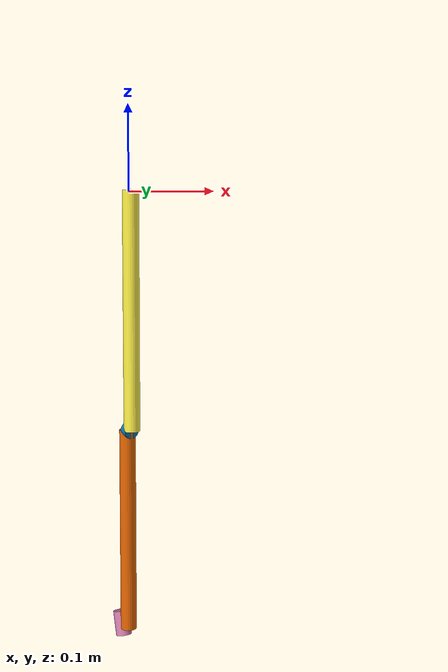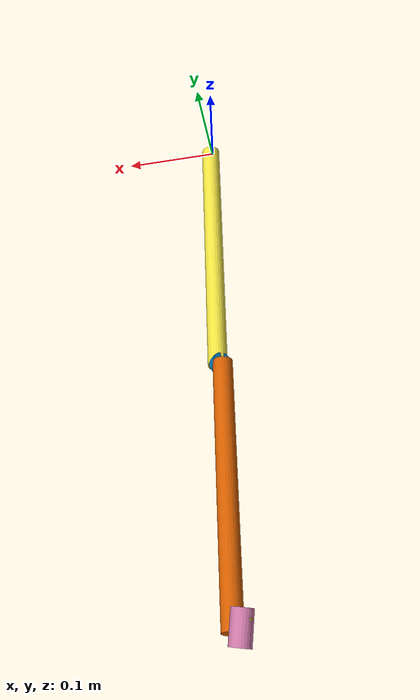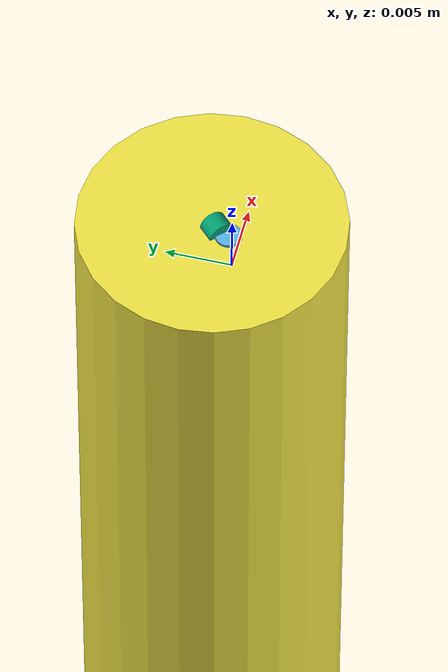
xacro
<?xml version="1.0"?>
<robot xmlns:xacro="http://www.ros.org/wiki/xacro" name="human_arm">

    <xacro:property name="bone_density" value="${1850}" />

    <xacro:property name="len_humerus_y" value=" 0.2904" />
    <xacro:property name="len_ulna_z" value=" 0.0200" />
    <xacro:property name="len_humerus_z" value=" 0.0123" />
    <xacro:property name="len_humerus_x" value=" 0.0061" />
    <xacro:property name="len_ulna_y" value=" 0.0115" />
    <xacro:property name="len_radius_y" value=" 0.2420" />
    <xacro:property name="len_radius_yprime" value=" 0.0040" />
    <xacro:property name="len_radius_d" value=" 0.0292" />
    <xacro:property name="len_radius_a" value=" 0.0105" />

    <!--Limits interfere with transformations. There is therefor given full range for each link temporarily-->
    <xacro:property name="joint1_lower" value="${0}" />
    <xacro:property name="joint1_upper" value="${2*pi}" />
    <xacro:property name="joint2_lower" value="${0}" />
    <xacro:property name="joint2_upper" value="${2*pi}" />
    <xacro:property name="joint3_lower" value="${0}" />
    <xacro:property name="joint3_upper" value="${2*pi}" />
    <xacro:property name="joint4_lower" value="${0}" />
    <xacro:property name="joint4_upper" value="${2*pi}" />
    <xacro:property name="joint5_lower" value="${0}" />
    <xacro:property name="joint5_upper" value="${2*pi}" />
    <xacro:property name="joint6_lower" value="${0}" />
    <xacro:property name="joint6_upper" value="${2*pi}" />
    <xacro:property name="joint7_lower" value="${0}" />
    <xacro:property name="joint7_upper" value="${2*pi}" />

    <xacro:macro name="inertia_tensor_cylinder" params="length:=1 radius:=0.1 mass:=1">
        <inertial>
            <mass value="${mass}"/>
            <inertia ixx="${1/12*mass*pow(length,2)}"
            ixy="0.0" ixz="0.0" iyy="0"
            iyz="0.0" izz="${1/12*mass*pow(length,2)}"/>
        </inertial>
    </xacro:macro>
    <xacro:macro name ="inertia_bone_cylinder" params="length radius">
        <xacro:inertia_tensor_cylinder length="${length}" radius="${radius}"
         mass="${bone_density*pi*pow(radius,2)*length}">
         </xacro:inertia_tensor_cylinder>
    </xacro:macro>

    <xacro:macro name ="ax_to_rpy" params="ax:=0 ay:=0 az:=0 bx:=0 by:=0 bz:=0">
        <xacro:if value="${bx != 0 or by != 0 or bz != 0}">
            <xacro:property name="rvx" value="${ay*bz-az*by}" />
            <xacro:property name="rvy" value="${az*bx-ax*bz}" />
            <xacro:property name="rvz" value="${ax*by-ay*bx}" />
            <xacro:property name="angle" value="${acos((ax*bx + ay*by + az*bz)/(sqrt(pow(ax,2) + pow(ay,2) + pow(az,2)) * sqrt(pow(bx,2) + pow(by,2) + pow(bz, 2))))}" />

            <xacro:property name="r32" value="${rvy*rvz*(1-cos(angle)) + rvx*sin(angle)}" />
            <xacro:property name="r33" value="${pow(rvz,2)*(1-cos(angle))+cos(angle)}" />
            <xacro:property name="r31" value="${rvx*rvz*(1-cos(angle)) - rvy*sin(angle)}" />
            <xacro:property name="r21" value="${rvx*rvy*(1-cos(angle)) + rvz*sin(angle)}" />
            <xacro:property name="r11" value="${pow(rvx,2)*(1-cos(angle)) + cos(angle)}" />

            <xacro:property name="ax_roll" scope="parent" value="${atan2(r32, r33)}" />
            <xacro:property name="ax_pitch" scope="parent" value="${atan2(-r31, sqrt(pow(r32,2) + pow(r33,2)))}" />
            <xacro:property name="ax_yaw" scope="parent" value="${atan2(r21, r11)}" />
        </xacro:if>

        <xacro:if value="${bx == 0 and by == 0 and bz == 0}">
            <xacro:property name="ax_roll" scope="parent" value="0" />
            <xacro:property name="ax_pitch" scope="parent" value="0" />
            <xacro:property name="ax_yaw" scope="parent" value="0" />
        </xacro:if>

    </xacro:macro>

    <xacro:macro name="dh_to_urdf" params = "theta:=0 d:=0 a:=0 alpha:=0">
        <xacro:property name="r32" value="${sin(alpha) * cos(theta)}" />
        <xacro:property name="r33" value="${cos(alpha)}" />
        <xacro:property name="r31" value="${sin(alpha)*sin(theta)}" />
        <xacro:property name="r21" value="${cos(alpha)*sin(theta)}" />
        <xacro:property name="r11" value="${cos(theta)}" />

        <xacro:property name="dh_to_urdf_roll" scope="parent" value="${atan2(r32, r33)}" />
        <xacro:property name="dh_to_urdf_pitch" scope="parent" value="${atan2(-r31, sqrt(pow(r32,2) + pow(r33,2)))}" />
        <xacro:property name="dh_to_urdf_yaw" scope="parent" value="${atan2(r21, r11)}" />

        <xacro:property name="dh_to_urdf_x" scope="parent" value="${a}" />
        <xacro:property name="dh_to_urdf_y" scope="parent" value="${-sin(alpha)*d}" />
        <xacro:property name="dh_to_urdf_z" scope="parent" value="${cos(alpha)*d}" />
    </xacro:macro>

    <xacro:macro name = "frame_pair" params = "parent child:=0 joint_t:=fixed theta:=0.0 d:=0.0 a:=0.0 alpha:=0. limit_lower:=0. limit_upper:=${2*pi} velocity:=0.5 effort:=1000.0">
        <!--Non psdeudo link-->
        <xacro:property name="link_radius" value="0.01" />
        <!--Pseudo link-->
        <xacro:if value="${d == 0.0 and a == 0.0}">
            <!--1e-10 is an abitrary small value used to define an infinitesimal small link-->
            <xacro:property name="d" value="0.001" />
            <xacro:property name="a" value="0.001" />
            <xacro:property name="link_radius" value="0.001" />
        </xacro:if>

        <xacro:if value="${child != 0}">
            <xacro:dh_to_urdf theta="${theta}" d="${d}" a="${a}" alpha="${alpha}"/>
            <joint name = "joint_${parent}_${child}" type = "${joint_t}">
                <parent link = "${parent}"/>
                <child link = "${child}"/>
                <origin xyz="${dh_to_urdf_x} ${dh_to_urdf_y} ${dh_to_urdf_z}" rpy = "${dh_to_urdf_roll} ${dh_to_urdf_pitch} ${dh_to_urdf_yaw}"/>
                <xacro:if value="${joint_t == 'revolute' or joint_t == 'prismatic'}">
                    <axis xyz = "0 0 1"/>
                    <limit lower = "${limit_lower}" upper = "${limit_upper}" velocity="${velocity}" effort="${effort}"/>
                </xacro:if>
            </joint>
        </xacro:if>

        <link name = "${parent}">
            <xacro:if value="${child != 0}">
                <xacro:ax_to_rpy ax="0" ay="0" az="1" bx="${dh_to_urdf_x}" by="${dh_to_urdf_y}" bz="${dh_to_urdf_z}"/>
                <xacro:property name="link_length" value="${sqrt(pow(dh_to_urdf_x,2) + pow(dh_to_urdf_y,2) + pow(dh_to_urdf_z,2))}" />

                <visual>
                    <geometry>
                        <cylinder length = "${link_length}" radius = "${link_radius}"/>
                    </geometry>
                    <!--Maybe make origin into some sort of variable? Used 3 times-->
                    <origin xyz ="${dh_to_urdf_x/2} ${dh_to_urdf_y/2} ${dh_to_urdf_z/2}" rpy = "${ax_roll} ${ax_pitch} ${ax_yaw}"/>
                </visual>
                <collsion>
                    <geometry>
                        <cylinder length = "${link_length}" radius = "${link_radius}"/>
                    </geometry>
                    <origin xyz ="${dh_to_urdf_x/2} ${dh_to_urdf_y/2} ${dh_to_urdf_z/2}" rpy = "${ax_roll} ${ax_pitch} ${ax_yaw}"/>
                </collsion>
                <xacro:inertia_bone_cylinder length="${link_length}" radius="${link_radius}">
                </xacro:inertia_bone_cylinder>
            </xacro:if>
        </link>
    </xacro:macro>

    <xacro:frame_pair parent="base_link" child="Scaphant" joint_t="fixed" theta="${radians(90)}"/>

    <xacro:frame_pair parent="Scaphant" child="Humphant" joint_t="revolute"
     limit_lower="${joint1_lower}" limit_upper="${joint1_upper}"/>

    <xacro:frame_pair parent="Humphant" child="Humphant1" joint_t="revolute" alpha="${radians(90)}"
    limit_lower="${joint2_lower}" limit_upper="${joint2_upper}"/>

    <xacro:frame_pair parent="Humphant1" child="Humerus" joint_t="revolute" theta="${radians(-90)}"
    d="${-len_humerus_y}" alpha="${radians(-90)}" limit_lower = "${joint3_lower}" limit_upper = "${joint3_upper}"/>

    <xacro:frame_pair parent="Humerus" child="Ulna" joint_t="revolute" theta="${radians(180)}"
    d="${len_ulna_z - len_humerus_z}" a="${-len_humerus_x}" alpha="${radians(-90)}"
    limit_lower = "${joint4_lower}" limit_upper = "${joint4_upper}"/>

    <xacro:frame_pair parent="Ulna" child="Radius" joint_t="revolute" theta="${radians(-124.2)}"
    d="${-len_ulna_y -len_radius_y -len_radius_yprime}" alpha="${radians(-90)}"
    limit_lower = "${joint5_lower}" limit_upper = "${joint5_upper}"/>

    <xacro:frame_pair parent="Radius" child="Z6" joint_t="revolute" theta="${radians(101.3)}"
    d="${-len_radius_d}" a="${len_radius_a}" alpha="${radians(97.8)}"
    limit_lower = "${joint6_lower}" limit_upper = "${joint6_upper}"/>

    <xacro:frame_pair parent="Z6" child="Lunate" joint_t="revolute" theta="${radians(13.7)}"
    alpha="${radians(-145)}" limit_lower="${joint7_lower}" limit_upper = "${joint7_upper}"/>

    <xacro:frame_pair parent="Lunate" child="Hand" joint_t="fixed" theta="${radians(-90)}"
    alpha="${radians(-90)}"/>

    <xacro:frame_pair parent="Hand"/>

</robot>
